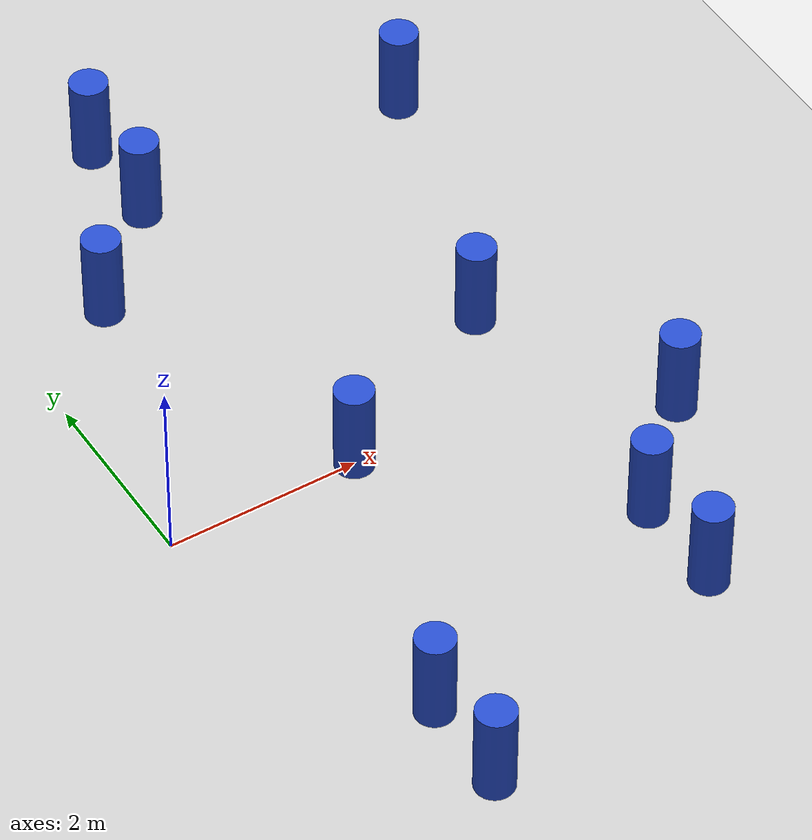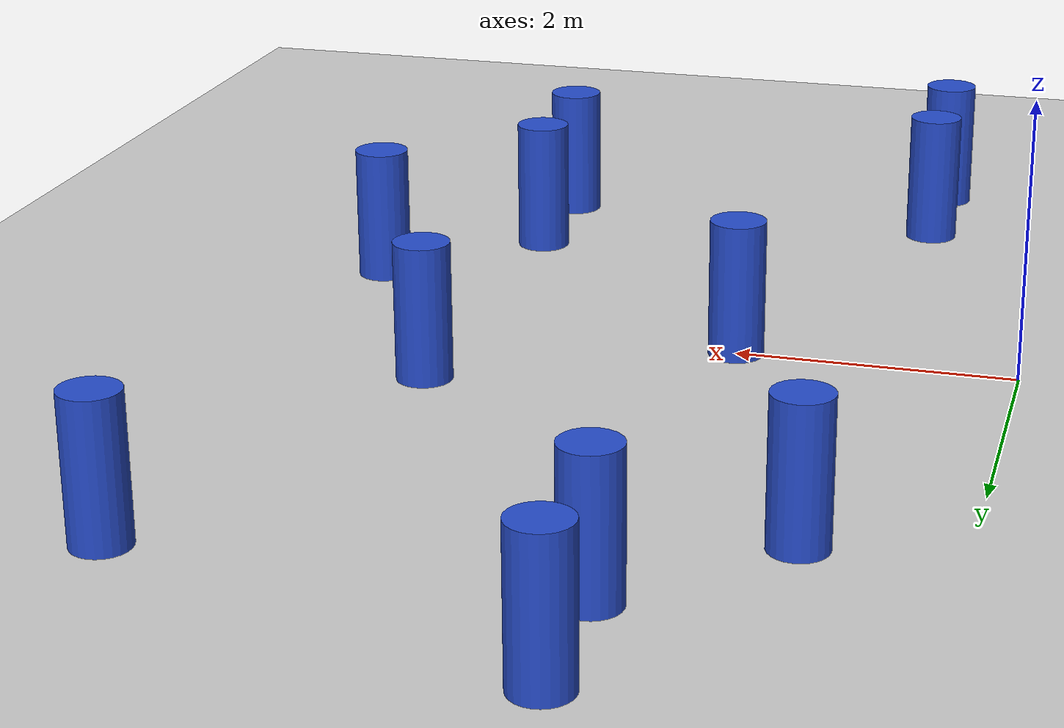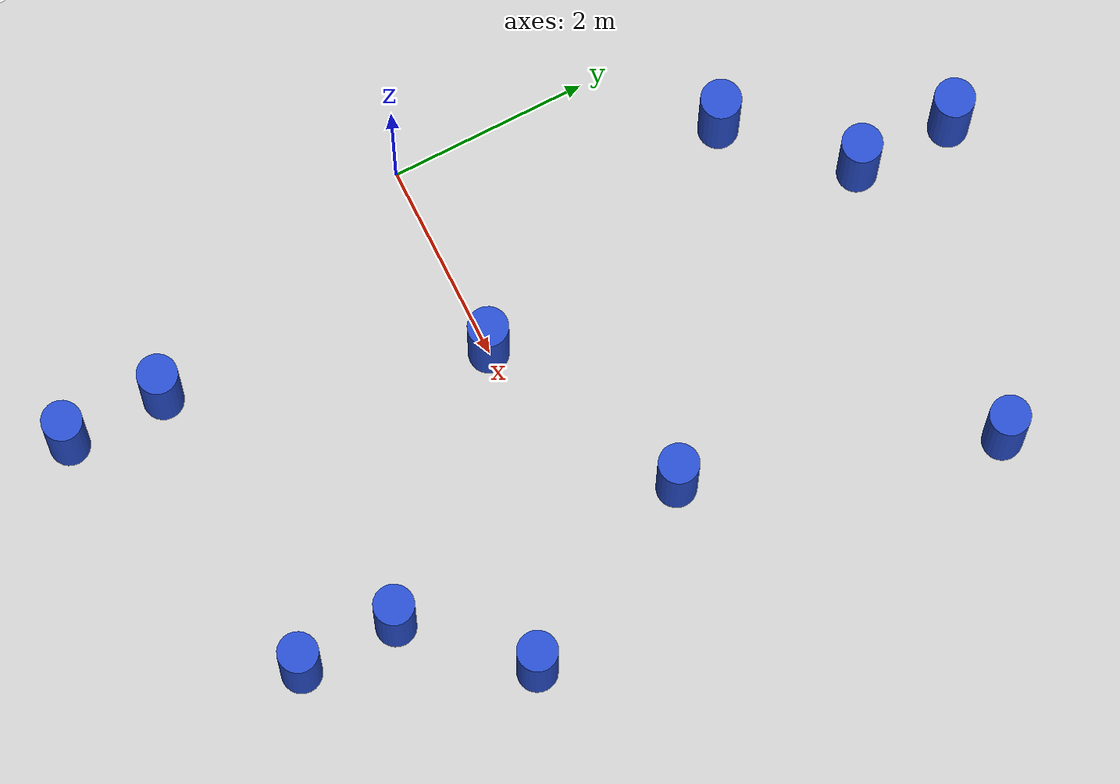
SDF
<sdf version="1.7">
 <world name="default">
  <model name="ground_plane">
   <static>1</static>
   <link name="link">
    <collision name="collision">
     <geometry><plane><normal>0 0 1</normal><size>100 100</size></plane></geometry>
     <surface>
      <contact><collide_bitmask>65535</collide_bitmask></contact>
      <friction><ode><mu>100</mu><mu2>50</mu2></ode></friction>
     </surface>
    </collision>
    <visual name="visual">
     <cast_shadows>0</cast_shadows>
     <geometry><plane><normal>0 0 1</normal><size>100 100</size></plane></geometry>
     <material>
      <script><uri>file://media/materials/scripts/gazebo.material</uri><name>Gazebo/Grey</name></script>
     </material>
    </visual>
   </link>
  </model>
  <model name="20x100cm_cylinder_clone">
   <link name="link">
    <inertial>
     <mass>1</mass>
     <inertia><ixx>0.145833</ixx><ixy>0</ixy><ixz>0</ixz><iyy>0.145833</iyy><iyz>0</iyz><izz>0.125</izz></inertia>
    </inertial>
    <visual name="visual">
     <geometry><cylinder><radius>0.2</radius><length>1</length></cylinder></geometry>
     <material>
      <script><name>Gazebo/Blue</name><uri>file://media/materials/scripts/gazebo.material</uri></script>
      <shader type="pixel"><normal_map>__default__</normal_map></shader>
      <ambient>0.3 0.3 0.3 1</ambient>
      <diffuse>0.7 0.7 0.7 1</diffuse>
      <specular>0.01 0.01 0.01 1</specular>
      <emissive>0 0 0 1</emissive>
     </material>
    </visual>
    <collision name="collision">
     <geometry><cylinder><radius>0.2</radius><length>1</length></cylinder></geometry>
     <surface>
      <friction>
       <ode><mu>1</mu><mu2>1</mu2><fdir1>0 0 0</fdir1><slip1>0</slip1><slip2>0</slip2></ode>
       <torsional>
        <coefficient>1</coefficient>
        <patch_radius>0</patch_radius>
        <surface_radius>0</surface_radius>
        <use_patch_radius>1</use_patch_radius>
        <ode><slip>0</slip></ode>
       </torsional>
      </friction>
      <bounce><restitution_coefficient>0</restitution_coefficient><threshold>1e+06</threshold></bounce>
      <contact>
       <collide_without_contact>0</collide_without_contact>
       <collide_without_contact_bitmask>1</collide_without_contact_bitmask>
       <collide_bitmask>1</collide_bitmask>
       <ode>
        <soft_cfm>0</soft_cfm>
        <soft_erp>0.2</soft_erp>
        <kp>1e+13</kp>
        <kd>1</kd>
        <max_vel>0.01</max_vel>
        <min_depth>0</min_depth>
       </ode>
       <bullet>
        <split_impulse>1</split_impulse>
        <split_impulse_penetration_threshold>-0.01</split_impulse_penetration_threshold>
        <soft_cfm>0</soft_cfm>
        <soft_erp>0.2</soft_erp>
        <kp>1e+13</kp>
        <kd>1</kd>
       </bullet>
      </contact>
     </surface>
    </collision>
   </link>
   <static>0</static>
   <pose>1.00001 -4 0.499999 0 0 -1.6e-05</pose>
  </model>
  <model name="20x100cm_cylinder_clone_0">
   <link name="link">
    <inertial>
     <mass>1</mass>
     <inertia><ixx>0.145833</ixx><ixy>0</ixy><ixz>0</ixz><iyy>0.145833</iyy><iyz>0</iyz><izz>0.125</izz></inertia>
    </inertial>
    <visual name="visual">
     <geometry><cylinder><radius>0.2</radius><length>1</length></cylinder></geometry>
     <material>
      <script><name>Gazebo/Blue</name><uri>file://media/materials/scripts/gazebo.material</uri></script>
      <shader type="pixel"><normal_map>__default__</normal_map></shader>
      <ambient>0.3 0.3 0.3 1</ambient>
      <diffuse>0.7 0.7 0.7 1</diffuse>
      <specular>0.01 0.01 0.01 1</specular>
      <emissive>0 0 0 1</emissive>
     </material>
    </visual>
    <collision name="collision">
     <geometry><cylinder><radius>0.2</radius><length>1</length></cylinder></geometry>
     <surface>
      <friction>
       <ode><mu>1</mu><mu2>1</mu2><fdir1>0 0 0</fdir1><slip1>0</slip1><slip2>0</slip2></ode>
       <torsional>
        <coefficient>1</coefficient>
        <patch_radius>0</patch_radius>
        <surface_radius>0</surface_radius>
        <use_patch_radius>1</use_patch_radius>
        <ode><slip>0</slip></ode>
       </torsional>
      </friction>
      <bounce><restitution_coefficient>0</restitution_coefficient><threshold>1e+06</threshold></bounce>
      <contact>
       <collide_without_contact>0</collide_without_contact>
       <collide_without_contact_bitmask>1</collide_without_contact_bitmask>
       <collide_bitmask>1</collide_bitmask>
       <ode>
        <soft_cfm>0</soft_cfm>
        <soft_erp>0.2</soft_erp>
        <kp>1e+13</kp>
        <kd>1</kd>
        <max_vel>0.01</max_vel>
        <min_depth>0</min_depth>
       </ode>
       <bullet>
        <split_impulse>1</split_impulse>
        <split_impulse_penetration_threshold>-0.01</split_impulse_penetration_threshold>
        <soft_cfm>0</soft_cfm>
        <soft_erp>0.2</soft_erp>
        <kp>1e+13</kp>
        <kd>1</kd>
       </bullet>
      </contact>
     </surface>
    </collision>
   </link>
   <static>0</static>
   <pose>4.00001 1 0.499999 0 0 -1.6e-05</pose>
  </model>
  <model name="20x100cm_cylinder_clone_4">
   <link name="link">
    <inertial>
     <mass>1</mass>
     <inertia><ixx>0.145833</ixx><ixy>0</ixy><ixz>0</ixz><iyy>0.145833</iyy><iyz>0</iyz><izz>0.125</izz></inertia>
    </inertial>
    <visual name="visual">
     <geometry><cylinder><radius>0.2</radius><length>1</length></cylinder></geometry>
     <material>
      <script><name>Gazebo/Blue</name><uri>file://media/materials/scripts/gazebo.material</uri></script>
      <shader type="pixel"><normal_map>__default__</normal_map></shader>
      <ambient>0.3 0.3 0.3 1</ambient>
      <diffuse>0.7 0.7 0.7 1</diffuse>
      <specular>0.01 0.01 0.01 1</specular>
      <emissive>0 0 0 1</emissive>
     </material>
    </visual>
    <collision name="collision">
     <geometry><cylinder><radius>0.2</radius><length>1</length></cylinder></geometry>
     <surface>
      <friction>
       <ode><mu>1</mu><mu2>1</mu2><fdir1>0 0 0</fdir1><slip1>0</slip1><slip2>0</slip2></ode>
       <torsional>
        <coefficient>1</coefficient>
        <patch_radius>0</patch_radius>
        <surface_radius>0</surface_radius>
        <use_patch_radius>1</use_patch_radius>
        <ode><slip>0</slip></ode>
       </torsional>
      </friction>
      <bounce><restitution_coefficient>0</restitution_coefficient><threshold>1e+06</threshold></bounce>
      <contact>
       <collide_without_contact>0</collide_without_contact>
       <collide_without_contact_bitmask>1</collide_without_contact_bitmask>
       <collide_bitmask>1</collide_bitmask>
       <ode>
        <soft_cfm>0</soft_cfm>
        <soft_erp>0.2</soft_erp>
        <kp>1e+13</kp>
        <kd>1</kd>
        <max_vel>0.01</max_vel>
        <min_depth>0</min_depth>
       </ode>
       <bullet>
        <split_impulse>1</split_impulse>
        <split_impulse_penetration_threshold>-0.01</split_impulse_penetration_threshold>
        <soft_cfm>0</soft_cfm>
        <soft_erp>0.2</soft_erp>
        <kp>1e+13</kp>
        <kd>1</kd>
       </bullet>
      </contact>
     </surface>
    </collision>
   </link>
   <static>0</static>
   <pose>1.00001 3 0.499999 0 0 -1.6e-05</pose>
  </model>
  <model name="20x100cm_cylinder_clone_5">
   <link name="link">
    <inertial>
     <mass>1</mass>
     <inertia><ixx>0.145833</ixx><ixy>0</ixy><ixz>0</ixz><iyy>0.145833</iyy><iyz>0</iyz><izz>0.125</izz></inertia>
    </inertial>
    <visual name="visual">
     <geometry><cylinder><radius>0.2</radius><length>1</length></cylinder></geometry>
     <material>
      <script><name>Gazebo/Blue</name><uri>file://media/materials/scripts/gazebo.material</uri></script>
      <shader type="pixel"><normal_map>__default__</normal_map></shader>
      <ambient>0.3 0.3 0.3 1</ambient>
      <diffuse>0.7 0.7 0.7 1</diffuse>
      <specular>0.01 0.01 0.01 1</specular>
      <emissive>0 0 0 1</emissive>
     </material>
    </visual>
    <collision name="collision">
     <geometry><cylinder><radius>0.2</radius><length>1</length></cylinder></geometry>
     <surface>
      <friction>
       <ode><mu>1</mu><mu2>1</mu2><fdir1>0 0 0</fdir1><slip1>0</slip1><slip2>0</slip2></ode>
       <torsional>
        <coefficient>1</coefficient>
        <patch_radius>0</patch_radius>
        <surface_radius>0</surface_radius>
        <use_patch_radius>1</use_patch_radius>
        <ode><slip>0</slip></ode>
       </torsional>
      </friction>
      <bounce><restitution_coefficient>0</restitution_coefficient><threshold>1e+06</threshold></bounce>
      <contact>
       <collide_without_contact>0</collide_without_contact>
       <collide_without_contact_bitmask>1</collide_without_contact_bitmask>
       <collide_bitmask>1</collide_bitmask>
       <ode>
        <soft_cfm>0</soft_cfm>
        <soft_erp>0.2</soft_erp>
        <kp>1e+13</kp>
        <kd>1</kd>
        <max_vel>0.01</max_vel>
        <min_depth>0</min_depth>
       </ode>
       <bullet>
        <split_impulse>1</split_impulse>
        <split_impulse_penetration_threshold>-0.01</split_impulse_penetration_threshold>
        <soft_cfm>0</soft_cfm>
        <soft_erp>0.2</soft_erp>
        <kp>1e+13</kp>
        <kd>1</kd>
       </bullet>
      </contact>
     </surface>
    </collision>
   </link>
   <static>0</static>
   <pose>2.00001 5 0.499999 0 0 -1.6e-05</pose>
  </model>
  <model name="20x100cm_cylinder_clone_6">
   <link name="link">
    <inertial>
     <mass>1</mass>
     <inertia><ixx>0.145833</ixx><ixy>0</ixy><ixz>0</ixz><iyy>0.145833</iyy><iyz>0</iyz><izz>0.125</izz></inertia>
    </inertial>
    <visual name="visual">
     <geometry><cylinder><radius>0.2</radius><length>1</length></cylinder></geometry>
     <material>
      <script><name>Gazebo/Blue</name><uri>file://media/materials/scripts/gazebo.material</uri></script>
      <shader type="pixel"><normal_map>__default__</normal_map></shader>
      <ambient>0.3 0.3 0.3 1</ambient>
      <diffuse>0.7 0.7 0.7 1</diffuse>
      <specular>0.01 0.01 0.01 1</specular>
      <emissive>0 0 0 1</emissive>
     </material>
    </visual>
    <collision name="collision">
     <geometry><cylinder><radius>0.2</radius><length>1</length></cylinder></geometry>
     <surface>
      <friction>
       <ode><mu>1</mu><mu2>1</mu2><fdir1>0 0 0</fdir1><slip1>0</slip1><slip2>0</slip2></ode>
       <torsional>
        <coefficient>1</coefficient>
        <patch_radius>0</patch_radius>
        <surface_radius>0</surface_radius>
        <use_patch_radius>1</use_patch_radius>
        <ode><slip>0</slip></ode>
       </torsional>
      </friction>
      <bounce><restitution_coefficient>0</restitution_coefficient><threshold>1e+06</threshold></bounce>
      <contact>
       <collide_without_contact>0</collide_without_contact>
       <collide_without_contact_bitmask>1</collide_without_contact_bitmask>
       <collide_bitmask>1</collide_bitmask>
       <ode>
        <soft_cfm>0</soft_cfm>
        <soft_erp>0.2</soft_erp>
        <kp>1e+13</kp>
        <kd>1</kd>
        <max_vel>0.01</max_vel>
        <min_depth>0</min_depth>
       </ode>
       <bullet>
        <split_impulse>1</split_impulse>
        <split_impulse_penetration_threshold>-0.01</split_impulse_penetration_threshold>
        <soft_cfm>0</soft_cfm>
        <soft_erp>0.2</soft_erp>
        <kp>1e+13</kp>
        <kd>1</kd>
       </bullet>
      </contact>
     </surface>
    </collision>
   </link>
   <static>0</static>
   <pose>4.00001 -3 0.499999 0 0 -1.6e-05</pose>
  </model>
  <model name="20x100cm_cylinder_clone_8">
   <link name="link">
    <inertial>
     <mass>1</mass>
     <inertia><ixx>0.145833</ixx><ixy>0</ixy><ixz>0</ixz><iyy>0.145833</iyy><iyz>0</iyz><izz>0.125</izz></inertia>
    </inertial>
    <visual name="visual">
     <geometry><cylinder><radius>0.2</radius><length>1</length></cylinder></geometry>
     <material>
      <script><name>Gazebo/Blue</name><uri>file://media/materials/scripts/gazebo.material</uri></script>
      <shader type="pixel"><normal_map>__default__</normal_map></shader>
      <ambient>0.3 0.3 0.3 1</ambient>
      <diffuse>0.7 0.7 0.7 1</diffuse>
      <specular>0.01 0.01 0.01 1</specular>
      <emissive>0 0 0 1</emissive>
     </material>
    </visual>
    <collision name="collision">
     <geometry><cylinder><radius>0.2</radius><length>1</length></cylinder></geometry>
     <surface>
      <friction>
       <ode><mu>1</mu><mu2>1</mu2><fdir1>0 0 0</fdir1><slip1>0</slip1><slip2>0</slip2></ode>
       <torsional>
        <coefficient>1</coefficient>
        <patch_radius>0</patch_radius>
        <surface_radius>0</surface_radius>
        <use_patch_radius>1</use_patch_radius>
        <ode><slip>0</slip></ode>
       </torsional>
      </friction>
      <bounce><restitution_coefficient>0</restitution_coefficient><threshold>1e+06</threshold></bounce>
      <contact>
       <collide_without_contact>0</collide_without_contact>
       <collide_without_contact_bitmask>1</collide_without_contact_bitmask>
       <collide_bitmask>1</collide_bitmask>
       <ode>
        <soft_cfm>0</soft_cfm>
        <soft_erp>0.2</soft_erp>
        <kp>1e+13</kp>
        <kd>1</kd>
        <max_vel>0.01</max_vel>
        <min_depth>0</min_depth>
       </ode>
       <bullet>
        <split_impulse>1</split_impulse>
        <split_impulse_penetration_threshold>-0.01</split_impulse_penetration_threshold>
        <soft_cfm>0</soft_cfm>
        <soft_erp>0.2</soft_erp>
        <kp>1e+13</kp>
        <kd>1</kd>
       </bullet>
      </contact>
     </surface>
    </collision>
   </link>
   <static>0</static>
   <pose>4.00001 -2 0.499999 0 0 -1.6e-05</pose>
  </model>
  <model name="20x100cm_cylinder_clone_9">
   <link name="link">
    <inertial>
     <mass>1</mass>
     <inertia><ixx>0.145833</ixx><ixy>0</ixy><ixz>0</ixz><iyy>0.145833</iyy><iyz>0</iyz><izz>0.125</izz></inertia>
    </inertial>
    <visual name="visual">
     <geometry><cylinder><radius>0.2</radius><length>1</length></cylinder></geometry>
     <material>
      <script><name>Gazebo/Blue</name><uri>file://media/materials/scripts/gazebo.material</uri></script>
      <shader type="pixel"><normal_map>__default__</normal_map></shader>
      <ambient>0.3 0.3 0.3 1</ambient>
      <diffuse>0.7 0.7 0.7 1</diffuse>
      <specular>0.01 0.01 0.01 1</specular>
      <emissive>0 0 0 1</emissive>
     </material>
    </visual>
    <collision name="collision">
     <geometry><cylinder><radius>0.2</radius><length>1</length></cylinder></geometry>
     <surface>
      <friction>
       <ode><mu>1</mu><mu2>1</mu2><fdir1>0 0 0</fdir1><slip1>0</slip1><slip2>0</slip2></ode>
       <torsional>
        <coefficient>1</coefficient>
        <patch_radius>0</patch_radius>
        <surface_radius>0</surface_radius>
        <use_patch_radius>1</use_patch_radius>
        <ode><slip>0</slip></ode>
       </torsional>
      </friction>
      <bounce><restitution_coefficient>0</restitution_coefficient><threshold>1e+06</threshold></bounce>
      <contact>
       <collide_without_contact>0</collide_without_contact>
       <collide_without_contact_bitmask>1</collide_without_contact_bitmask>
       <collide_bitmask>1</collide_bitmask>
       <ode>
        <soft_cfm>0</soft_cfm>
        <soft_erp>0.2</soft_erp>
        <kp>1e+13</kp>
        <kd>1</kd>
        <max_vel>0.01</max_vel>
        <min_depth>0</min_depth>
       </ode>
       <bullet>
        <split_impulse>1</split_impulse>
        <split_impulse_penetration_threshold>-0.01</split_impulse_penetration_threshold>
        <soft_cfm>0</soft_cfm>
        <soft_erp>0.2</soft_erp>
        <kp>1e+13</kp>
        <kd>1</kd>
       </bullet>
      </contact>
     </surface>
    </collision>
   </link>
   <static>0</static>
   <pose>2.00042 -0.004233 0.5 0 0 -0.001468</pose>
  </model>
  <model name="20x100cm_cylinder_clone_10">
   <link name="link">
    <inertial>
     <mass>1</mass>
     <inertia><ixx>0.145833</ixx><ixy>0</ixy><ixz>0</ixz><iyy>0.145833</iyy><iyz>0</iyz><izz>0.125</izz></inertia>
    </inertial>
    <visual name="visual">
     <geometry><cylinder><radius>0.2</radius><length>1</length></cylinder></geometry>
     <material>
      <script><name>Gazebo/Blue</name><uri>file://media/materials/scripts/gazebo.material</uri></script>
      <shader type="pixel"><normal_map>__default__</normal_map></shader>
      <ambient>0.3 0.3 0.3 1</ambient>
      <diffuse>0.7 0.7 0.7 1</diffuse>
      <specular>0.01 0.01 0.01 1</specular>
      <emissive>0 0 0 1</emissive>
     </material>
    </visual>
    <collision name="collision">
     <geometry><cylinder><radius>0.2</radius><length>1</length></cylinder></geometry>
     <surface>
      <friction>
       <ode><mu>1</mu><mu2>1</mu2><fdir1>0 0 0</fdir1><slip1>0</slip1><slip2>0</slip2></ode>
       <torsional>
        <coefficient>1</coefficient>
        <patch_radius>0</patch_radius>
        <surface_radius>0</surface_radius>
        <use_patch_radius>1</use_patch_radius>
        <ode><slip>0</slip></ode>
       </torsional>
      </friction>
      <bounce><restitution_coefficient>0</restitution_coefficient><threshold>1e+06</threshold></bounce>
      <contact>
       <collide_without_contact>0</collide_without_contact>
       <collide_without_contact_bitmask>1</collide_without_contact_bitmask>
       <collide_bitmask>1</collide_bitmask>
       <ode>
        <soft_cfm>0</soft_cfm>
        <soft_erp>0.2</soft_erp>
        <kp>1e+13</kp>
        <kd>1</kd>
        <max_vel>0.01</max_vel>
        <min_depth>0</min_depth>
       </ode>
       <bullet>
        <split_impulse>1</split_impulse>
        <split_impulse_penetration_threshold>-0.01</split_impulse_penetration_threshold>
        <soft_cfm>0</soft_cfm>
        <soft_erp>0.2</soft_erp>
        <kp>1e+13</kp>
        <kd>1</kd>
       </bullet>
      </contact>
     </surface>
    </collision>
   </link>
   <static>0</static>
   <pose>1.00001 -3 0.499999 0 0 -1.6e-05</pose>
  </model>
  <model name="20x100cm_cylinder_clone_12">
   <link name="link">
    <inertial>
     <mass>1</mass>
     <inertia><ixx>0.145833</ixx><ixy>0</ixy><ixz>0</ixz><iyy>0.145833</iyy><iyz>0</iyz><izz>0.125</izz></inertia>
    </inertial>
    <visual name="visual">
     <geometry><cylinder><radius>0.2</radius><length>1</length></cylinder></geometry>
     <material>
      <script><name>Gazebo/Blue</name><uri>file://media/materials/scripts/gazebo.material</uri></script>
      <shader type="pixel"><normal_map>__default__</normal_map></shader>
      <ambient>0.3 0.3 0.3 1</ambient>
      <diffuse>0.7 0.7 0.7 1</diffuse>
      <specular>0.01 0.01 0.01 1</specular>
      <emissive>0 0 0 1</emissive>
     </material>
    </visual>
    <collision name="collision">
     <geometry><cylinder><radius>0.2</radius><length>1</length></cylinder></geometry>
     <surface>
      <friction>
       <ode><mu>1</mu><mu2>1</mu2><fdir1>0 0 0</fdir1><slip1>0</slip1><slip2>0</slip2></ode>
       <torsional>
        <coefficient>1</coefficient>
        <patch_radius>0</patch_radius>
        <surface_radius>0</surface_radius>
        <use_patch_radius>1</use_patch_radius>
        <ode><slip>0</slip></ode>
       </torsional>
      </friction>
      <bounce><restitution_coefficient>0</restitution_coefficient><threshold>1e+06</threshold></bounce>
      <contact>
       <collide_without_contact>0</collide_without_contact>
       <collide_without_contact_bitmask>1</collide_without_contact_bitmask>
       <collide_bitmask>1</collide_bitmask>
       <ode>
        <soft_cfm>0</soft_cfm>
        <soft_erp>0.2</soft_erp>
        <kp>1e+13</kp>
        <kd>1</kd>
        <max_vel>0.01</max_vel>
        <min_depth>0</min_depth>
       </ode>
       <bullet>
        <split_impulse>1</split_impulse>
        <split_impulse_penetration_threshold>-0.01</split_impulse_penetration_threshold>
        <soft_cfm>0</soft_cfm>
        <soft_erp>0.2</soft_erp>
        <kp>1e+13</kp>
        <kd>1</kd>
       </bullet>
      </contact>
     </surface>
    </collision>
   </link>
   <static>0</static>
   <pose>5.00001 -0.999997 0.499999 0 0 -1.6e-05</pose>
  </model>
  <model name="20x100cm_cylinder_clone_13">
   <link name="link">
    <inertial>
     <mass>1</mass>
     <inertia><ixx>0.145833</ixx><ixy>0</ixy><ixz>0</ixz><iyy>0.145833</iyy><iyz>0</iyz><izz>0.125</izz></inertia>
    </inertial>
    <visual name="visual">
     <geometry><cylinder><radius>0.2</radius><length>1</length></cylinder></geometry>
     <material>
      <script><name>Gazebo/Blue</name><uri>file://media/materials/scripts/gazebo.material</uri></script>
      <shader type="pixel"><normal_map>__default__</normal_map></shader>
      <ambient>0.3 0.3 0.3 1</ambient>
      <diffuse>0.7 0.7 0.7 1</diffuse>
      <specular>0.01 0.01 0.01 1</specular>
      <emissive>0 0 0 1</emissive>
     </material>
    </visual>
    <collision name="collision">
     <geometry><cylinder><radius>0.2</radius><length>1</length></cylinder></geometry>
     <surface>
      <friction>
       <ode><mu>1</mu><mu2>1</mu2><fdir1>0 0 0</fdir1><slip1>0</slip1><slip2>0</slip2></ode>
       <torsional>
        <coefficient>1</coefficient>
        <patch_radius>0</patch_radius>
        <surface_radius>0</surface_radius>
        <use_patch_radius>1</use_patch_radius>
        <ode><slip>0</slip></ode>
       </torsional>
      </friction>
      <bounce><restitution_coefficient>0</restitution_coefficient><threshold>1e+06</threshold></bounce>
      <contact>
       <collide_without_contact>0</collide_without_contact>
       <collide_without_contact_bitmask>1</collide_without_contact_bitmask>
       <collide_bitmask>1</collide_bitmask>
       <ode>
        <soft_cfm>0</soft_cfm>
        <soft_erp>0.2</soft_erp>
        <kp>1e+13</kp>
        <kd>1</kd>
        <max_vel>0.01</max_vel>
        <min_depth>0</min_depth>
       </ode>
       <bullet>
        <split_impulse>1</split_impulse>
        <split_impulse_penetration_threshold>-0.01</split_impulse_penetration_threshold>
        <soft_cfm>0</soft_cfm>
        <soft_erp>0.2</soft_erp>
        <kp>1e+13</kp>
        <kd>1</kd>
       </bullet>
      </contact>
     </surface>
    </collision>
   </link>
   <static>0</static>
   <pose>5.00001 4 0.499999 0 0 -1.6e-05</pose>
  </model>
  <model name="20x100cm_cylinder_clone_19">
   <link name="link">
    <inertial>
     <mass>1</mass>
     <inertia><ixx>0.145833</ixx><ixy>0</ixy><ixz>0</ixz><iyy>0.145833</iyy><iyz>0</iyz><izz>0.125</izz></inertia>
    </inertial>
    <visual name="visual">
     <geometry><cylinder><radius>0.2</radius><length>1</length></cylinder></geometry>
     <material>
      <script><name>Gazebo/Blue</name><uri>file://media/materials/scripts/gazebo.material</uri></script>
      <shader type="pixel"><normal_map>__default__</normal_map></shader>
      <ambient>0.3 0.3 0.3 1</ambient>
      <diffuse>0.7 0.7 0.7 1</diffuse>
      <specular>0.01 0.01 0.01 1</specular>
      <emissive>0 0 0 1</emissive>
     </material>
    </visual>
    <collision name="collision">
     <geometry><cylinder><radius>0.2</radius><length>1</length></cylinder></geometry>
     <surface>
      <friction>
       <ode><mu>1</mu><mu2>1</mu2><fdir1>0 0 0</fdir1><slip1>0</slip1><slip2>0</slip2></ode>
       <torsional>
        <coefficient>1</coefficient>
        <patch_radius>0</patch_radius>
        <surface_radius>0</surface_radius>
        <use_patch_radius>1</use_patch_radius>
        <ode><slip>0</slip></ode>
       </torsional>
      </friction>
      <bounce><restitution_coefficient>0</restitution_coefficient><threshold>1e+06</threshold></bounce>
      <contact>
       <collide_without_contact>0</collide_without_contact>
       <collide_without_contact_bitmask>1</collide_without_contact_bitmask>
       <collide_bitmask>1</collide_bitmask>
       <ode>
        <soft_cfm>0</soft_cfm>
        <soft_erp>0.2</soft_erp>
        <kp>1e+13</kp>
        <kd>1</kd>
        <max_vel>0.01</max_vel>
        <min_depth>0</min_depth>
       </ode>
       <bullet>
        <split_impulse>1</split_impulse>
        <split_impulse_penetration_threshold>-0.01</split_impulse_penetration_threshold>
        <soft_cfm>0</soft_cfm>
        <soft_erp>0.2</soft_erp>
        <kp>1e+13</kp>
        <kd>1</kd>
       </bullet>
      </contact>
     </surface>
    </collision>
   </link>
   <static>0</static>
   <pose>2.00001 4 0.499999 0 0 -1.6e-05</pose>
  </model>
 </world>
</sdf>
